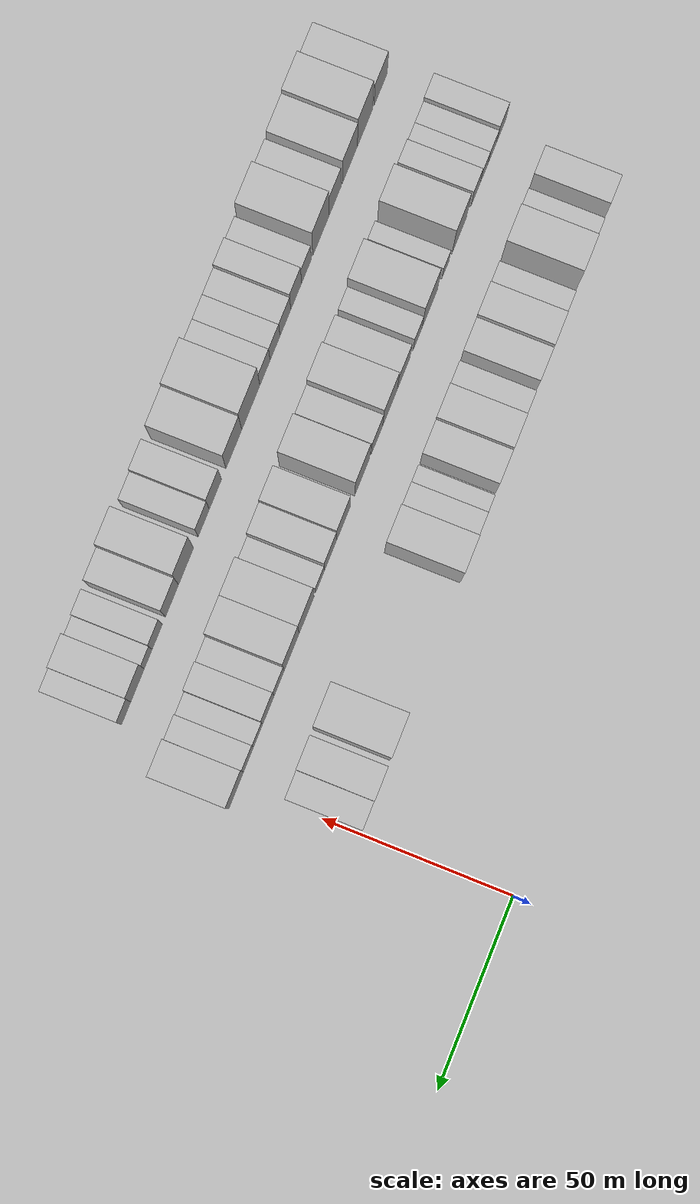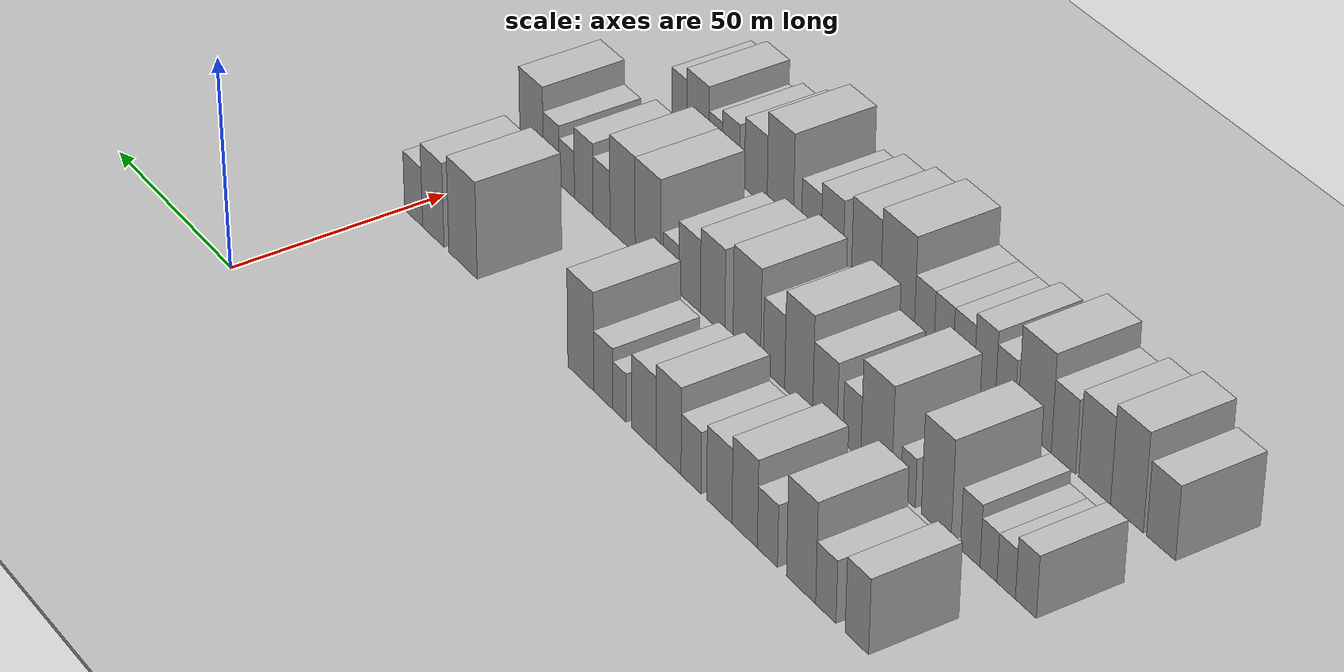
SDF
<sdf version="1.6">
 <world name="default">
  <include><name>ground_plane_1</name><uri>model://HANNAS_ground_plane</uri></include>
  <include>
   <name>ground_plane_2</name>
   <uri>model://HANNAS_ground_plane</uri>
   <pose>100 0 0  0 0 0</pose>
  </include>
  <model name="building_21">
   <static>1</static>
   <pose>50.0000 -167.6378 0 0.000000 0.000000 0.000000</pose>
   <link name="link">
    <pose>0 0 9.00 0 0 0</pose>
    <collision name="collision"><geometry><box><size>20.0000 7.6166 18.0000</size></box></geometry></collision>
    <visual name="visual">
     <cast_shadows>0</cast_shadows>
     <geometry><box><size>20.0000 7.6166 18.0000</size></box></geometry>
     <material>
      <script>
       <uri>model://HANNAS_wall/materials/scripts</uri>
       <uri>model://HANNAS_wall/materials/textures</uri>
       <name>vrc/HANNAS_wall</name>
      </script>
     </material>
    </visual>
   </link>
  </model>
  <model name="building_22">
   <static>1</static>
   <pose>50.0000 -157.4717 0 0.000000 0.000000 0.000000</pose>
   <link name="link">
    <pose>0 0 7.50 0 0 0</pose>
    <collision name="collision"><geometry><box><size>20.0000 6.7156 15.0000</size></box></geometry></collision>
    <visual name="visual">
     <cast_shadows>0</cast_shadows>
     <geometry><box><size>20.0000 6.7156 15.0000</size></box></geometry>
     <material>
      <script>
       <uri>model://HANNAS_wall/materials/scripts</uri>
       <uri>model://HANNAS_wall/materials/textures</uri>
       <name>vrc/HANNAS_wall</name>
      </script>
     </material>
    </visual>
   </link>
  </model>
  <model name="building_23">
   <static>1</static>
   <pose>50.0000 -149.2440 0 0.000000 0.000000 0.000000</pose>
   <link name="link">
    <pose>0 0 12.00 0 0 0</pose>
    <collision name="collision"><geometry><box><size>20.0000 9.7397 24.0000</size></box></geometry></collision>
    <visual name="visual">
     <cast_shadows>0</cast_shadows>
     <geometry><box><size>20.0000 9.7397 24.0000</size></box></geometry>
     <material>
      <script>
       <uri>model://HANNAS_wall/materials/scripts</uri>
       <uri>model://HANNAS_wall/materials/textures</uri>
       <name>vrc/HANNAS_wall</name>
      </script>
     </material>
    </visual>
   </link>
  </model>
  <model name="building_24">
   <static>1</static>
   <pose>50.0000 -137.9327 0 0.000000 0.000000 0.000000</pose>
   <link name="link">
    <pose>0 0 7.50 0 0 0</pose>
    <collision name="collision"><geometry><box><size>20.0000 6.8829 15.0000</size></box></geometry></collision>
    <visual name="visual">
     <cast_shadows>0</cast_shadows>
     <geometry><box><size>20.0000 6.8829 15.0000</size></box></geometry>
     <material>
      <script>
       <uri>model://HANNAS_wall/materials/scripts</uri>
       <uri>model://HANNAS_wall/materials/textures</uri>
       <name>vrc/HANNAS_wall</name>
      </script>
     </material>
    </visual>
   </link>
  </model>
  <model name="building_25">
   <static>1</static>
   <pose>50.0000 -130.1155 0 0.000000 0.000000 0.000000</pose>
   <link name="link">
    <pose>0 0 10.50 0 0 0</pose>
    <collision name="collision"><geometry><box><size>20.0000 8.7515 21.0000</size></box></geometry></collision>
    <visual name="visual">
     <cast_shadows>0</cast_shadows>
     <geometry><box><size>20.0000 8.7515 21.0000</size></box></geometry>
     <material>
      <script>
       <uri>model://HANNAS_wall/materials/scripts</uri>
       <uri>model://HANNAS_wall/materials/textures</uri>
       <name>vrc/HANNAS_wall</name>
      </script>
     </material>
    </visual>
   </link>
  </model>
  <model name="building_26">
   <static>1</static>
   <pose>50.0000 -121.3373 0 0.000000 0.000000 0.000000</pose>
   <link name="link">
    <pose>0 0 9.00 0 0 0</pose>
    <collision name="collision"><geometry><box><size>20.0000 8.8049 18.0000</size></box></geometry></collision>
    <visual name="visual">
     <cast_shadows>0</cast_shadows>
     <geometry><box><size>20.0000 8.8049 18.0000</size></box></geometry>
     <material>
      <script>
       <uri>model://HANNAS_wall/materials/scripts</uri>
       <uri>model://HANNAS_wall/materials/textures</uri>
       <name>vrc/HANNAS_wall</name>
      </script>
     </material>
    </visual>
   </link>
  </model>
  <model name="building_27">
   <static>1</static>
   <pose>50.0000 -111.3800 0 0.000000 0.000000 0.000000</pose>
   <link name="link">
    <pose>0 0 7.50 0 0 0</pose>
    <collision name="collision"><geometry><box><size>20.0000 7.1098 15.0000</size></box></geometry></collision>
    <visual name="visual">
     <cast_shadows>0</cast_shadows>
     <geometry><box><size>20.0000 7.1098 15.0000</size></box></geometry>
     <material>
      <script>
       <uri>model://HANNAS_wall/materials/scripts</uri>
       <uri>model://HANNAS_wall/materials/textures</uri>
       <name>vrc/HANNAS_wall</name>
      </script>
     </material>
    </visual>
   </link>
  </model>
  <model name="building_28">
   <static>1</static>
   <pose>50.0000 -103.3615 0 0.000000 0.000000 0.000000</pose>
   <link name="link">
    <pose>0 0 10.50 0 0 0</pose>
    <collision name="collision"><geometry><box><size>20.0000 8.9272 21.0000</size></box></geometry></collision>
    <visual name="visual">
     <cast_shadows>0</cast_shadows>
     <geometry><box><size>20.0000 8.9272 21.0000</size></box></geometry>
     <material>
      <script>
       <uri>model://HANNAS_wall/materials/scripts</uri>
       <uri>model://HANNAS_wall/materials/textures</uri>
       <name>vrc/HANNAS_wall</name>
      </script>
     </material>
    </visual>
   </link>
  </model>
  <model name="building_29">
   <static>1</static>
   <pose>50.0000 -94.4564 0 0.000000 0.000000 0.000000</pose>
   <link name="link">
    <pose>0 0 9.00 0 0 0</pose>
    <collision name="collision"><geometry><box><size>20.0000 8.8831 18.0000</size></box></geometry></collision>
    <visual name="visual">
     <cast_shadows>0</cast_shadows>
     <geometry><box><size>20.0000 8.8831 18.0000</size></box></geometry>
     <material>
      <script>
       <uri>model://HANNAS_wall/materials/scripts</uri>
       <uri>model://HANNAS_wall/materials/textures</uri>
       <name>vrc/HANNAS_wall</name>
      </script>
     </material>
    </visual>
   </link>
  </model>
  <model name="building_30">
   <static>1</static>
   <pose>50.0000 -85.5442 0 0.000000 0.000000 0.000000</pose>
   <link name="link">
    <pose>0 0 6.00 0 0 0</pose>
    <collision name="collision"><geometry><box><size>20.0000 4.9413 12.0000</size></box></geometry></collision>
    <visual name="visual">
     <cast_shadows>0</cast_shadows>
     <geometry><box><size>20.0000 4.9413 12.0000</size></box></geometry>
     <material>
      <script>
       <uri>model://HANNAS_wall/materials/scripts</uri>
       <uri>model://HANNAS_wall/materials/textures</uri>
       <name>vrc/HANNAS_wall</name>
      </script>
     </material>
    </visual>
   </link>
  </model>
  <model name="building_31">
   <static>1</static>
   <pose>50.0000 -79.5141 0 0.000000 0.000000 0.000000</pose>
   <link name="link">
    <pose>0 0 7.50 0 0 0</pose>
    <collision name="collision"><geometry><box><size>20.0000 7.1188 15.0000</size></box></geometry></collision>
    <visual name="visual">
     <cast_shadows>0</cast_shadows>
     <geometry><box><size>20.0000 7.1188 15.0000</size></box></geometry>
     <material>
      <script>
       <uri>model://HANNAS_wall/materials/scripts</uri>
       <uri>model://HANNAS_wall/materials/textures</uri>
       <name>vrc/HANNAS_wall</name>
      </script>
     </material>
    </visual>
   </link>
  </model>
  <model name="building_32">
   <static>1</static>
   <pose>50.0000 -71.0748 0 0.000000 0.000000 0.000000</pose>
   <link name="link">
    <pose>0 0 12.00 0 0 0</pose>
    <collision name="collision"><geometry><box><size>20.0000 9.7599 24.0000</size></box></geometry></collision>
    <visual name="visual">
     <cast_shadows>0</cast_shadows>
     <geometry><box><size>20.0000 9.7599 24.0000</size></box></geometry>
     <material>
      <script>
       <uri>model://HANNAS_wall/materials/scripts</uri>
       <uri>model://HANNAS_wall/materials/textures</uri>
       <name>vrc/HANNAS_wall</name>
      </script>
     </material>
    </visual>
   </link>
  </model>
  <model name="building_33">
   <static>1</static>
   <pose>50.0000 -25.0586 0 0.000000 0.000000 0.000000</pose>
   <link name="link">
    <pose>0 0 12.00 0 0 0</pose>
    <collision name="collision"><geometry><box><size>20.0000 11.4242 24.0000</size></box></geometry></collision>
    <visual name="visual">
     <cast_shadows>0</cast_shadows>
     <geometry><box><size>20.0000 11.4242 24.0000</size></box></geometry>
     <material>
      <script>
       <uri>model://HANNAS_wall/materials/scripts</uri>
       <uri>model://HANNAS_wall/materials/textures</uri>
       <name>vrc/HANNAS_wall</name>
      </script>
     </material>
    </visual>
   </link>
  </model>
  <model name="building_34">
   <static>1</static>
   <pose>50.0000 -12.9446 0 0.000000 0.000000 0.000000</pose>
   <link name="link">
    <pose>0 0 10.50 0 0 0</pose>
    <collision name="collision"><geometry><box><size>20.0000 8.8038 21.0000</size></box></geometry></collision>
    <visual name="visual">
     <cast_shadows>0</cast_shadows>
     <geometry><box><size>20.0000 8.8038 21.0000</size></box></geometry>
     <material>
      <script>
       <uri>model://HANNAS_wall/materials/scripts</uri>
       <uri>model://HANNAS_wall/materials/textures</uri>
       <name>vrc/HANNAS_wall</name>
      </script>
     </material>
    </visual>
   </link>
  </model>
  <model name="building_35">
   <static>1</static>
   <pose>50.0000 -4.8245 0 0.000000 0.000000 0.000000</pose>
   <link name="link">
    <pose>0 0 7.50 0 0 0</pose>
    <collision name="collision"><geometry><box><size>20.0000 7.4364 15.0000</size></box></geometry></collision>
    <visual name="visual">
     <cast_shadows>0</cast_shadows>
     <geometry><box><size>20.0000 7.4364 15.0000</size></box></geometry>
     <material>
      <script>
       <uri>model://HANNAS_wall/materials/scripts</uri>
       <uri>model://HANNAS_wall/materials/textures</uri>
       <name>vrc/HANNAS_wall</name>
      </script>
     </material>
    </visual>
   </link>
  </model>
  <model name="building_95">
   <static>1</static>
   <pose>82.0000 -175.7835 0 0.000000 0.000000 0.000000</pose>
   <link name="link">
    <pose>0 0 7.50 0 0 0</pose>
    <collision name="collision"><geometry><box><size>20.0000 6.6079 15.0000</size></box></geometry></collision>
    <visual name="visual">
     <cast_shadows>0</cast_shadows>
     <geometry><box><size>20.0000 6.6079 15.0000</size></box></geometry>
     <material>
      <script>
       <uri>model://HANNAS_wall/materials/scripts</uri>
       <uri>model://HANNAS_wall/materials/textures</uri>
       <name>vrc/HANNAS_wall</name>
      </script>
     </material>
    </visual>
   </link>
  </model>
  <model name="building_96">
   <static>1</static>
   <pose>82.0000 -169.5654 0 0.000000 0.000000 0.000000</pose>
   <link name="link">
    <pose>0 0 6.00 0 0 0</pose>
    <collision name="collision"><geometry><box><size>20.0000 5.8284 12.0000</size></box></geometry></collision>
    <visual name="visual">
     <cast_shadows>0</cast_shadows>
     <geometry><box><size>20.0000 5.8284 12.0000</size></box></geometry>
     <material>
      <script>
       <uri>model://HANNAS_wall/materials/scripts</uri>
       <uri>model://HANNAS_wall/materials/textures</uri>
       <name>vrc/HANNAS_wall</name>
      </script>
     </material>
    </visual>
   </link>
  </model>
  <model name="building_97">
   <static>1</static>
   <pose>82.0000 -163.9446 0 0.000000 0.000000 0.000000</pose>
   <link name="link">
    <pose>0 0 6.00 0 0 0</pose>
    <collision name="collision"><geometry><box><size>20.0000 5.4131 12.0000</size></box></geometry></collision>
    <visual name="visual">
     <cast_shadows>0</cast_shadows>
     <geometry><box><size>20.0000 5.4131 12.0000</size></box></geometry>
     <material>
      <script>
       <uri>model://HANNAS_wall/materials/scripts</uri>
       <uri>model://HANNAS_wall/materials/textures</uri>
       <name>vrc/HANNAS_wall</name>
      </script>
     </material>
    </visual>
   </link>
  </model>
  <model name="building_98">
   <static>1</static>
   <pose>82.0000 -158.0741 0 0.000000 0.000000 0.000000</pose>
   <link name="link">
    <pose>0 0 7.50 0 0 0</pose>
    <collision name="collision"><geometry><box><size>20.0000 6.3278 15.0000</size></box></geometry></collision>
    <visual name="visual">
     <cast_shadows>0</cast_shadows>
     <geometry><box><size>20.0000 6.3278 15.0000</size></box></geometry>
     <material>
      <script>
       <uri>model://HANNAS_wall/materials/scripts</uri>
       <uri>model://HANNAS_wall/materials/textures</uri>
       <name>vrc/HANNAS_wall</name>
      </script>
     </material>
    </visual>
   </link>
  </model>
  <model name="building_99">
   <static>1</static>
   <pose>82.0000 -147.0016 0 0.000000 0.000000 0.000000</pose>
   <link name="link">
    <pose>0 0 12.00 0 0 0</pose>
    <collision name="collision"><geometry><box><size>20.0000 9.8173 24.0000</size></box></geometry></collision>
    <visual name="visual">
     <cast_shadows>0</cast_shadows>
     <geometry><box><size>20.0000 9.8173 24.0000</size></box></geometry>
     <material>
      <script>
       <uri>model://HANNAS_wall/materials/scripts</uri>
       <uri>model://HANNAS_wall/materials/textures</uri>
       <name>vrc/HANNAS_wall</name>
      </script>
     </material>
    </visual>
   </link>
  </model>
  <model name="building_100">
   <static>1</static>
   <pose>82.0000 -137.6411 0 0.000000 0.000000 0.000000</pose>
   <link name="link">
    <pose>0 0 6.00 0 0 0</pose>
    <collision name="collision"><geometry><box><size>20.0000 4.9037 12.0000</size></box></geometry></collision>
    <visual name="visual">
     <cast_shadows>0</cast_shadows>
     <geometry><box><size>20.0000 4.9037 12.0000</size></box></geometry>
     <material>
      <script>
       <uri>model://HANNAS_wall/materials/scripts</uri>
       <uri>model://HANNAS_wall/materials/textures</uri>
       <name>vrc/HANNAS_wall</name>
      </script>
     </material>
    </visual>
   </link>
  </model>
  <model name="building_101">
   <static>1</static>
   <pose>82.0000 -126.9586 0 0.000000 0.000000 0.000000</pose>
   <link name="link">
    <pose>0 0 12.00 0 0 0</pose>
    <collision name="collision"><geometry><box><size>20.0000 10.4613 24.0000</size></box></geometry></collision>
    <visual name="visual">
     <cast_shadows>0</cast_shadows>
     <geometry><box><size>20.0000 10.4613 24.0000</size></box></geometry>
     <material>
      <script>
       <uri>model://HANNAS_wall/materials/scripts</uri>
       <uri>model://HANNAS_wall/materials/textures</uri>
       <name>vrc/HANNAS_wall</name>
      </script>
     </material>
    </visual>
   </link>
  </model>
  <model name="building_102">
   <static>1</static>
   <pose>82.0000 -118.6799 0 0.000000 0.000000 0.000000</pose>
   <link name="link">
    <pose>0 0 7.50 0 0 0</pose>
    <collision name="collision"><geometry><box><size>20.0000 6.0960 15.0000</size></box></geometry></collision>
    <visual name="visual">
     <cast_shadows>0</cast_shadows>
     <geometry><box><size>20.0000 6.0960 15.0000</size></box></geometry>
     <material>
      <script>
       <uri>model://HANNAS_wall/materials/scripts</uri>
       <uri>model://HANNAS_wall/materials/textures</uri>
       <name>vrc/HANNAS_wall</name>
      </script>
     </material>
    </visual>
   </link>
  </model>
  <model name="building_103">
   <static>1</static>
   <pose>82.0000 -109.3745 0 0.000000 0.000000 0.000000</pose>
   <link name="link">
    <pose>0 0 9.00 0 0 0</pose>
    <collision name="collision"><geometry><box><size>20.0000 8.5147 18.0000</size></box></geometry></collision>
    <visual name="visual">
     <cast_shadows>0</cast_shadows>
     <geometry><box><size>20.0000 8.5147 18.0000</size></box></geometry>
     <material>
      <script>
       <uri>model://HANNAS_wall/materials/scripts</uri>
       <uri>model://HANNAS_wall/materials/textures</uri>
       <name>vrc/HANNAS_wall</name>
      </script>
     </material>
    </visual>
   </link>
  </model>
  <model name="building_104">
   <static>1</static>
   <pose>82.0000 -100.1767 0 0.000000 0.000000 0.000000</pose>
   <link name="link">
    <pose>0 0 12.00 0 0 0</pose>
    <collision name="collision"><geometry><box><size>20.0000 9.8809 24.0000</size></box></geometry></collision>
    <visual name="visual">
     <cast_shadows>0</cast_shadows>
     <geometry><box><size>20.0000 9.8809 24.0000</size></box></geometry>
     <material>
      <script>
       <uri>model://HANNAS_wall/materials/scripts</uri>
       <uri>model://HANNAS_wall/materials/textures</uri>
       <name>vrc/HANNAS_wall</name>
      </script>
     </material>
    </visual>
   </link>
  </model>
  <model name="building_105">
   <static>1</static>
   <pose>82.0000 -91.4153 0 0.000000 0.000000 0.000000</pose>
   <link name="link">
    <pose>0 0 9.00 0 0 0</pose>
    <collision name="collision"><geometry><box><size>20.0000 7.6420 18.0000</size></box></geometry></collision>
    <visual name="visual">
     <cast_shadows>0</cast_shadows>
     <geometry><box><size>20.0000 7.6420 18.0000</size></box></geometry>
     <material>
      <script>
       <uri>model://HANNAS_wall/materials/scripts</uri>
       <uri>model://HANNAS_wall/materials/textures</uri>
       <name>vrc/HANNAS_wall</name>
      </script>
     </material>
    </visual>
   </link>
  </model>
  <model name="building_106">
   <static>1</static>
   <pose>82.0000 -81.5985 0 0.000000 0.000000 0.000000</pose>
   <link name="link">
    <pose>0 0 12.00 0 0 0</pose>
    <collision name="collision"><geometry><box><size>20.0000 9.9914 24.0000</size></box></geometry></collision>
    <visual name="visual">
     <cast_shadows>0</cast_shadows>
     <geometry><box><size>20.0000 9.9914 24.0000</size></box></geometry>
     <material>
      <script>
       <uri>model://HANNAS_wall/materials/scripts</uri>
       <uri>model://HANNAS_wall/materials/textures</uri>
       <name>vrc/HANNAS_wall</name>
      </script>
     </material>
    </visual>
   </link>
  </model>
  <model name="building_107">
   <static>1</static>
   <pose>82.0000 -69.0923 0 0.000000 0.000000 0.000000</pose>
   <link name="link">
    <pose>0 0 10.50 0 0 0</pose>
    <collision name="collision"><geometry><box><size>20.0000 9.0211 21.0000</size></box></geometry></collision>
    <visual name="visual">
     <cast_shadows>0</cast_shadows>
     <geometry><box><size>20.0000 9.0211 21.0000</size></box></geometry>
     <material>
      <script>
       <uri>model://HANNAS_wall/materials/scripts</uri>
       <uri>model://HANNAS_wall/materials/textures</uri>
       <name>vrc/HANNAS_wall</name>
      </script>
     </material>
    </visual>
   </link>
  </model>
  <model name="building_108">
   <static>1</static>
   <pose>82.0000 -60.5206 0 0.000000 0.000000 0.000000</pose>
   <link name="link">
    <pose>0 0 9.00 0 0 0</pose>
    <collision name="collision"><geometry><box><size>20.0000 8.1223 18.0000</size></box></geometry></collision>
    <visual name="visual">
     <cast_shadows>0</cast_shadows>
     <geometry><box><size>20.0000 8.1223 18.0000</size></box></geometry>
     <material>
      <script>
       <uri>model://HANNAS_wall/materials/scripts</uri>
       <uri>model://HANNAS_wall/materials/textures</uri>
       <name>vrc/HANNAS_wall</name>
      </script>
     </material>
    </visual>
   </link>
  </model>
  <model name="building_109">
   <static>1</static>
   <pose>82.0000 -53.5738 0 0.000000 0.000000 0.000000</pose>
   <link name="link">
    <pose>0 0 6.00 0 0 0</pose>
    <collision name="collision"><geometry><box><size>20.0000 5.7713 12.0000</size></box></geometry></collision>
    <visual name="visual">
     <cast_shadows>0</cast_shadows>
     <geometry><box><size>20.0000 5.7713 12.0000</size></box></geometry>
     <material>
      <script>
       <uri>model://HANNAS_wall/materials/scripts</uri>
       <uri>model://HANNAS_wall/materials/textures</uri>
       <name>vrc/HANNAS_wall</name>
      </script>
     </material>
    </visual>
   </link>
  </model>
  <model name="building_110">
   <static>1</static>
   <pose>82.0000 -44.7830 0 0.000000 0.000000 0.000000</pose>
   <link name="link">
    <pose>0 0 12.00 0 0 0</pose>
    <collision name="collision"><geometry><box><size>20.0000 9.8101 24.0000</size></box></geometry></collision>
    <visual name="visual">
     <cast_shadows>0</cast_shadows>
     <geometry><box><size>20.0000 9.8101 24.0000</size></box></geometry>
     <material>
      <script>
       <uri>model://HANNAS_wall/materials/scripts</uri>
       <uri>model://HANNAS_wall/materials/textures</uri>
       <name>vrc/HANNAS_wall</name>
      </script>
     </material>
    </visual>
   </link>
  </model>
  <model name="building_111">
   <static>1</static>
   <pose>82.0000 -34.9851 0 0.000000 0.000000 0.000000</pose>
   <link name="link">
    <pose>0 0 12.00 0 0 0</pose>
    <collision name="collision"><geometry><box><size>20.0000 9.7856 24.0000</size></box></geometry></collision>
    <visual name="visual">
     <cast_shadows>0</cast_shadows>
     <geometry><box><size>20.0000 9.7856 24.0000</size></box></geometry>
     <material>
      <script>
       <uri>model://HANNAS_wall/materials/scripts</uri>
       <uri>model://HANNAS_wall/materials/textures</uri>
       <name>vrc/HANNAS_wall</name>
      </script>
     </material>
    </visual>
   </link>
  </model>
  <model name="building_112">
   <static>1</static>
   <pose>82.0000 -26.7664 0 0.000000 0.000000 0.000000</pose>
   <link name="link">
    <pose>0 0 7.50 0 0 0</pose>
    <collision name="collision"><geometry><box><size>20.0000 6.6518 15.0000</size></box></geometry></collision>
    <visual name="visual">
     <cast_shadows>0</cast_shadows>
     <geometry><box><size>20.0000 6.6518 15.0000</size></box></geometry>
     <material>
      <script>
       <uri>model://HANNAS_wall/materials/scripts</uri>
       <uri>model://HANNAS_wall/materials/textures</uri>
       <name>vrc/HANNAS_wall</name>
      </script>
     </material>
    </visual>
   </link>
  </model>
  <model name="building_113">
   <static>1</static>
   <pose>82.0000 -19.7251 0 0.000000 0.000000 0.000000</pose>
   <link name="link">
    <pose>0 0 9.00 0 0 0</pose>
    <collision name="collision"><geometry><box><size>20.0000 7.4307 18.0000</size></box></geometry></collision>
    <visual name="visual">
     <cast_shadows>0</cast_shadows>
     <geometry><box><size>20.0000 7.4307 18.0000</size></box></geometry>
     <material>
      <script>
       <uri>model://HANNAS_wall/materials/scripts</uri>
       <uri>model://HANNAS_wall/materials/textures</uri>
       <name>vrc/HANNAS_wall</name>
      </script>
     </material>
    </visual>
   </link>
  </model>
  <model name="building_114">
   <static>1</static>
   <pose>82.0000 -13.0212 0 0.000000 0.000000 0.000000</pose>
   <link name="link">
    <pose>0 0 6.00 0 0 0</pose>
    <collision name="collision"><geometry><box><size>20.0000 5.9772 12.0000</size></box></geometry></collision>
    <visual name="visual">
     <cast_shadows>0</cast_shadows>
     <geometry><box><size>20.0000 5.9772 12.0000</size></box></geometry>
     <material>
      <script>
       <uri>model://HANNAS_wall/materials/scripts</uri>
       <uri>model://HANNAS_wall/materials/textures</uri>
       <name>vrc/HANNAS_wall</name>
      </script>
     </material>
    </visual>
   </link>
  </model>
  <model name="building_115">
   <static>1</static>
   <pose>82.0000 -6.7858 0 0.000000 0.000000 0.000000</pose>
   <link name="link">
    <pose>0 0 7.50 0 0 0</pose>
    <collision name="collision"><geometry><box><size>20.0000 6.4937 15.0000</size></box></geometry></collision>
    <visual name="visual">
     <cast_shadows>0</cast_shadows>
     <geometry><box><size>20.0000 6.4937 15.0000</size></box></geometry>
     <material>
      <script>
       <uri>model://HANNAS_wall/materials/scripts</uri>
       <uri>model://HANNAS_wall/materials/textures</uri>
       <name>vrc/HANNAS_wall</name>
      </script>
     </material>
    </visual>
   </link>
  </model>
  <model name="building_116">
   <static>1</static>
   <pose>82.0000 1.2370 0 0.000000 0.000000 0.000000</pose>
   <link name="link">
    <pose>0 0 10.50 0 0 0</pose>
    <collision name="collision"><geometry><box><size>20.0000 9.5518 21.0000</size></box></geometry></collision>
    <visual name="visual">
     <cast_shadows>0</cast_shadows>
     <geometry><box><size>20.0000 9.5518 21.0000</size></box></geometry>
     <material>
      <script>
       <uri>model://HANNAS_wall/materials/scripts</uri>
       <uri>model://HANNAS_wall/materials/textures</uri>
       <name>vrc/HANNAS_wall</name>
      </script>
     </material>
    </visual>
   </link>
  </model>
  <model name="building_174">
   <static>1</static>
   <pose>114.0000 -174.5490 0 0.000000 0.000000 0.000000</pose>
   <link name="link">
    <pose>0 0 9.00 0 0 0</pose>
    <collision name="collision"><geometry><box><size>20.0000 8.9568 18.0000</size></box></geometry></collision>
    <visual name="visual">
     <cast_shadows>0</cast_shadows>
     <geometry><box><size>20.0000 8.9568 18.0000</size></box></geometry>
     <material>
      <script>
       <uri>model://HANNAS_wall/materials/scripts</uri>
       <uri>model://HANNAS_wall/materials/textures</uri>
       <name>vrc/HANNAS_wall</name>
      </script>
     </material>
    </visual>
   </link>
  </model>
  <model name="building_175">
   <static>1</static>
   <pose>114.0000 -163.9231 0 0.000000 0.000000 0.000000</pose>
   <link name="link">
    <pose>0 0 12.00 0 0 0</pose>
    <collision name="collision"><geometry><box><size>20.0000 10.2950 24.0000</size></box></geometry></collision>
    <visual name="visual">
     <cast_shadows>0</cast_shadows>
     <geometry><box><size>20.0000 10.2950 24.0000</size></box></geometry>
     <material>
      <script>
       <uri>model://HANNAS_wall/materials/scripts</uri>
       <uri>model://HANNAS_wall/materials/textures</uri>
       <name>vrc/HANNAS_wall</name>
      </script>
     </material>
    </visual>
   </link>
  </model>
  <model name="building_176">
   <static>1</static>
   <pose>114.0000 -153.7016 0 0.000000 0.000000 0.000000</pose>
   <link name="link">
    <pose>0 0 10.50 0 0 0</pose>
    <collision name="collision"><geometry><box><size>20.0000 10.1480 21.0000</size></box></geometry></collision>
    <visual name="visual">
     <cast_shadows>0</cast_shadows>
     <geometry><box><size>20.0000 10.1480 21.0000</size></box></geometry>
     <material>
      <script>
       <uri>model://HANNAS_wall/materials/scripts</uri>
       <uri>model://HANNAS_wall/materials/textures</uri>
       <name>vrc/HANNAS_wall</name>
      </script>
     </material>
    </visual>
   </link>
  </model>
  <model name="building_177">
   <static>1</static>
   <pose>114.0000 -143.6958 0 0.000000 0.000000 0.000000</pose>
   <link name="link">
    <pose>0 0 9.00 0 0 0</pose>
    <collision name="collision"><geometry><box><size>20.0000 7.8636 18.0000</size></box></geometry></collision>
    <visual name="visual">
     <cast_shadows>0</cast_shadows>
     <geometry><box><size>20.0000 7.8636 18.0000</size></box></geometry>
     <material>
      <script>
       <uri>model://HANNAS_wall/materials/scripts</uri>
       <uri>model://HANNAS_wall/materials/textures</uri>
       <name>vrc/HANNAS_wall</name>
      </script>
     </material>
    </visual>
   </link>
  </model>
  <model name="building_178">
   <static>1</static>
   <pose>114.0000 -134.2433 0 0.000000 0.000000 0.000000</pose>
   <link name="link">
    <pose>0 0 12.00 0 0 0</pose>
    <collision name="collision"><geometry><box><size>20.0000 11.0414 24.0000</size></box></geometry></collision>
    <visual name="visual">
     <cast_shadows>0</cast_shadows>
     <geometry><box><size>20.0000 11.0414 24.0000</size></box></geometry>
     <material>
      <script>
       <uri>model://HANNAS_wall/materials/scripts</uri>
       <uri>model://HANNAS_wall/materials/textures</uri>
       <name>vrc/HANNAS_wall</name>
      </script>
     </material>
    </visual>
   </link>
  </model>
  <model name="building_179">
   <static>1</static>
   <pose>114.0000 -124.4831 0 0.000000 0.000000 0.000000</pose>
   <link name="link">
    <pose>0 0 7.50 0 0 0</pose>
    <collision name="collision"><geometry><box><size>20.0000 6.4790 15.0000</size></box></geometry></collision>
    <visual name="visual">
     <cast_shadows>0</cast_shadows>
     <geometry><box><size>20.0000 6.4790 15.0000</size></box></geometry>
     <material>
      <script>
       <uri>model://HANNAS_wall/materials/scripts</uri>
       <uri>model://HANNAS_wall/materials/textures</uri>
       <name>vrc/HANNAS_wall</name>
      </script>
     </material>
    </visual>
   </link>
  </model>
  <model name="building_180">
   <static>1</static>
   <pose>114.0000 -117.6393 0 0.000000 0.000000 0.000000</pose>
   <link name="link">
    <pose>0 0 9.00 0 0 0</pose>
    <collision name="collision"><geometry><box><size>20.0000 7.2086 18.0000</size></box></geometry></collision>
    <visual name="visual">
     <cast_shadows>0</cast_shadows>
     <geometry><box><size>20.0000 7.2086 18.0000</size></box></geometry>
     <material>
      <script>
       <uri>model://HANNAS_wall/materials/scripts</uri>
       <uri>model://HANNAS_wall/materials/textures</uri>
       <name>vrc/HANNAS_wall</name>
      </script>
     </material>
    </visual>
   </link>
  </model>
  <model name="building_181">
   <static>1</static>
   <pose>114.0000 -110.4557 0 0.000000 0.000000 0.000000</pose>
   <link name="link">
    <pose>0 0 7.50 0 0 0</pose>
    <collision name="collision"><geometry><box><size>20.0000 7.1585 15.0000</size></box></geometry></collision>
    <visual name="visual">
     <cast_shadows>0</cast_shadows>
     <geometry><box><size>20.0000 7.1585 15.0000</size></box></geometry>
     <material>
      <script>
       <uri>model://HANNAS_wall/materials/scripts</uri>
       <uri>model://HANNAS_wall/materials/textures</uri>
       <name>vrc/HANNAS_wall</name>
      </script>
     </material>
    </visual>
   </link>
  </model>
  <model name="building_182">
   <static>1</static>
   <pose>114.0000 -103.6040 0 0.000000 0.000000 0.000000</pose>
   <link name="link">
    <pose>0 0 7.50 0 0 0</pose>
    <collision name="collision"><geometry><box><size>20.0000 6.5448 15.0000</size></box></geometry></collision>
    <visual name="visual">
     <cast_shadows>0</cast_shadows>
     <geometry><box><size>20.0000 6.5448 15.0000</size></box></geometry>
     <material>
      <script>
       <uri>model://HANNAS_wall/materials/scripts</uri>
       <uri>model://HANNAS_wall/materials/textures</uri>
       <name>vrc/HANNAS_wall</name>
      </script>
     </material>
    </visual>
   </link>
  </model>
  <model name="building_183">
   <static>1</static>
   <pose>114.0000 -96.9200 0 0.000000 0.000000 0.000000</pose>
   <link name="link">
    <pose>0 0 7.50 0 0 0</pose>
    <collision name="collision"><geometry><box><size>20.0000 6.8231 15.0000</size></box></geometry></collision>
    <visual name="visual">
     <cast_shadows>0</cast_shadows>
     <geometry><box><size>20.0000 6.8231 15.0000</size></box></geometry>
     <material>
      <script>
       <uri>model://HANNAS_wall/materials/scripts</uri>
       <uri>model://HANNAS_wall/materials/textures</uri>
       <name>vrc/HANNAS_wall</name>
      </script>
     </material>
    </visual>
   </link>
  </model>
  <model name="building_184">
   <static>1</static>
   <pose>114.0000 -87.5251 0 0.000000 0.000000 0.000000</pose>
   <link name="link">
    <pose>0 0 12.00 0 0 0</pose>
    <collision name="collision"><geometry><box><size>20.0000 11.9668 24.0000</size></box></geometry></collision>
    <visual name="visual">
     <cast_shadows>0</cast_shadows>
     <geometry><box><size>20.0000 11.9668 24.0000</size></box></geometry>
     <material>
      <script>
       <uri>model://HANNAS_wall/materials/scripts</uri>
       <uri>model://HANNAS_wall/materials/textures</uri>
       <name>vrc/HANNAS_wall</name>
      </script>
     </material>
    </visual>
   </link>
  </model>
  <model name="building_185">
   <static>1</static>
   <pose>114.0000 -76.3653 0 0.000000 0.000000 0.000000</pose>
   <link name="link">
    <pose>0 0 10.50 0 0 0</pose>
    <collision name="collision"><geometry><box><size>20.0000 10.3528 21.0000</size></box></geometry></collision>
    <visual name="visual">
     <cast_shadows>0</cast_shadows>
     <geometry><box><size>20.0000 10.3528 21.0000</size></box></geometry>
     <material>
      <script>
       <uri>model://HANNAS_wall/materials/scripts</uri>
       <uri>model://HANNAS_wall/materials/textures</uri>
       <name>vrc/HANNAS_wall</name>
      </script>
     </material>
    </visual>
   </link>
  </model>
  <model name="building_186">
   <static>1</static>
   <pose>114.0000 -64.1913 0 0.000000 0.000000 0.000000</pose>
   <link name="link">
    <pose>0 0 9.00 0 0 0</pose>
    <collision name="collision"><geometry><box><size>20.0000 7.9952 18.0000</size></box></geometry></collision>
    <visual name="visual">
     <cast_shadows>0</cast_shadows>
     <geometry><box><size>20.0000 7.9952 18.0000</size></box></geometry>
     <material>
      <script>
       <uri>model://HANNAS_wall/materials/scripts</uri>
       <uri>model://HANNAS_wall/materials/textures</uri>
       <name>vrc/HANNAS_wall</name>
      </script>
     </material>
    </visual>
   </link>
  </model>
  <model name="building_187">
   <static>1</static>
   <pose>114.0000 -56.5495 0 0.000000 0.000000 0.000000</pose>
   <link name="link">
    <pose>0 0 7.50 0 0 0</pose>
    <collision name="collision"><geometry><box><size>20.0000 7.2884 15.0000</size></box></geometry></collision>
    <visual name="visual">
     <cast_shadows>0</cast_shadows>
     <geometry><box><size>20.0000 7.2884 15.0000</size></box></geometry>
     <material>
      <script>
       <uri>model://HANNAS_wall/materials/scripts</uri>
       <uri>model://HANNAS_wall/materials/textures</uri>
       <name>vrc/HANNAS_wall</name>
      </script>
     </material>
    </visual>
   </link>
  </model>
  <model name="building_188">
   <static>1</static>
   <pose>114.0000 -44.9965 0 0.000000 0.000000 0.000000</pose>
   <link name="link">
    <pose>0 0 12.00 0 0 0</pose>
    <collision name="collision"><geometry><box><size>20.0000 9.8176 24.0000</size></box></geometry></collision>
    <visual name="visual">
     <cast_shadows>0</cast_shadows>
     <geometry><box><size>20.0000 9.8176 24.0000</size></box></geometry>
     <material>
      <script>
       <uri>model://HANNAS_wall/materials/scripts</uri>
       <uri>model://HANNAS_wall/materials/textures</uri>
       <name>vrc/HANNAS_wall</name>
      </script>
     </material>
    </visual>
   </link>
  </model>
  <model name="building_189">
   <static>1</static>
   <pose>114.0000 -35.8274 0 0.000000 0.000000 0.000000</pose>
   <link name="link">
    <pose>0 0 9.00 0 0 0</pose>
    <collision name="collision"><geometry><box><size>20.0000 8.5207 18.0000</size></box></geometry></collision>
    <visual name="visual">
     <cast_shadows>0</cast_shadows>
     <geometry><box><size>20.0000 8.5207 18.0000</size></box></geometry>
     <material>
      <script>
       <uri>model://HANNAS_wall/materials/scripts</uri>
       <uri>model://HANNAS_wall/materials/textures</uri>
       <name>vrc/HANNAS_wall</name>
      </script>
     </material>
    </visual>
   </link>
  </model>
  <model name="building_190">
   <static>1</static>
   <pose>114.0000 -26.2597 0 0.000000 0.000000 0.000000</pose>
   <link name="link">
    <pose>0 0 7.50 0 0 0</pose>
    <collision name="collision"><geometry><box><size>20.0000 6.6146 15.0000</size></box></geometry></collision>
    <visual name="visual">
     <cast_shadows>0</cast_shadows>
     <geometry><box><size>20.0000 6.6146 15.0000</size></box></geometry>
     <material>
      <script>
       <uri>model://HANNAS_wall/materials/scripts</uri>
       <uri>model://HANNAS_wall/materials/textures</uri>
       <name>vrc/HANNAS_wall</name>
      </script>
     </material>
    </visual>
   </link>
  </model>
  <model name="building_191">
   <static>1</static>
   <pose>114.0000 -20.3952 0 0.000000 0.000000 0.000000</pose>
   <link name="link">
    <pose>0 0 6.00 0 0 0</pose>
    <collision name="collision"><geometry><box><size>20.0000 5.1145 12.0000</size></box></geometry></collision>
    <visual name="visual">
     <cast_shadows>0</cast_shadows>
     <geometry><box><size>20.0000 5.1145 12.0000</size></box></geometry>
     <material>
      <script>
       <uri>model://HANNAS_wall/materials/scripts</uri>
       <uri>model://HANNAS_wall/materials/textures</uri>
       <name>vrc/HANNAS_wall</name>
      </script>
     </material>
    </visual>
   </link>
  </model>
  <model name="building_192">
   <static>1</static>
   <pose>114.0000 -13.4889 0 0.000000 0.000000 0.000000</pose>
   <link name="link">
    <pose>0 0 9.00 0 0 0</pose>
    <collision name="collision"><geometry><box><size>20.0000 8.6980 18.0000</size></box></geometry></collision>
    <visual name="visual">
     <cast_shadows>0</cast_shadows>
     <geometry><box><size>20.0000 8.6980 18.0000</size></box></geometry>
     <material>
      <script>
       <uri>model://HANNAS_wall/materials/scripts</uri>
       <uri>model://HANNAS_wall/materials/textures</uri>
       <name>vrc/HANNAS_wall</name>
      </script>
     </material>
    </visual>
   </link>
  </model>
  <model name="building_193">
   <static>1</static>
   <pose>114.0000 -6.1359 0 0.000000 0.000000 0.000000</pose>
   <link name="link">
    <pose>0 0 7.50 0 0 0</pose>
    <collision name="collision"><geometry><box><size>20.0000 6.0080 15.0000</size></box></geometry></collision>
    <visual name="visual">
     <cast_shadows>0</cast_shadows>
     <geometry><box><size>20.0000 6.0080 15.0000</size></box></geometry>
     <material>
      <script>
       <uri>model://HANNAS_wall/materials/scripts</uri>
       <uri>model://HANNAS_wall/materials/textures</uri>
       <name>vrc/HANNAS_wall</name>
      </script>
     </material>
    </visual>
   </link>
  </model>
 </world>
</sdf>
